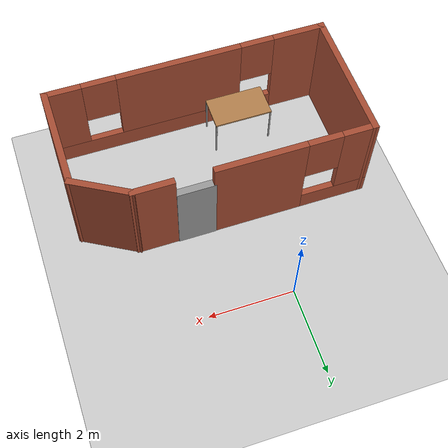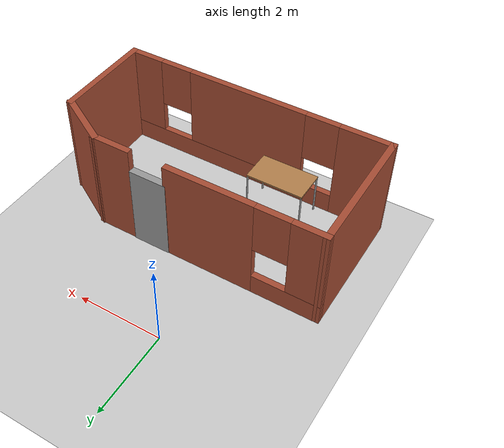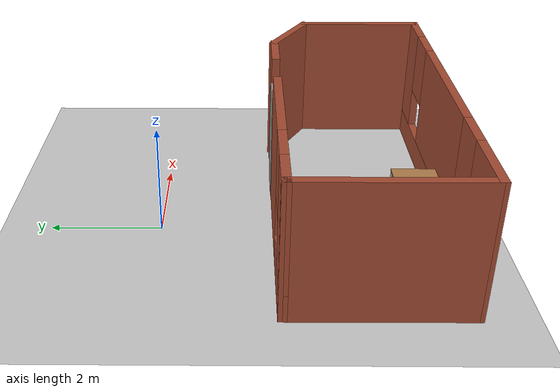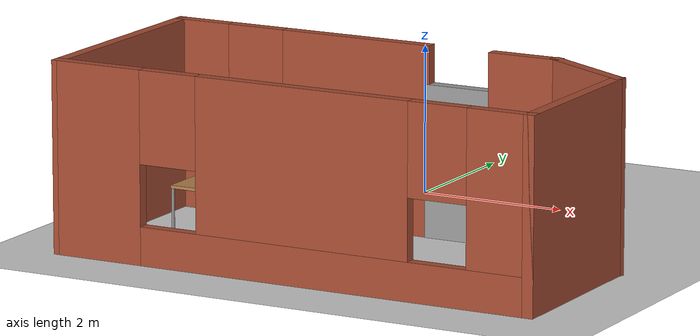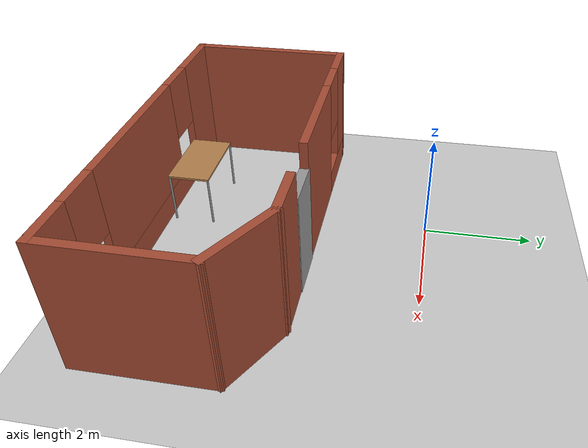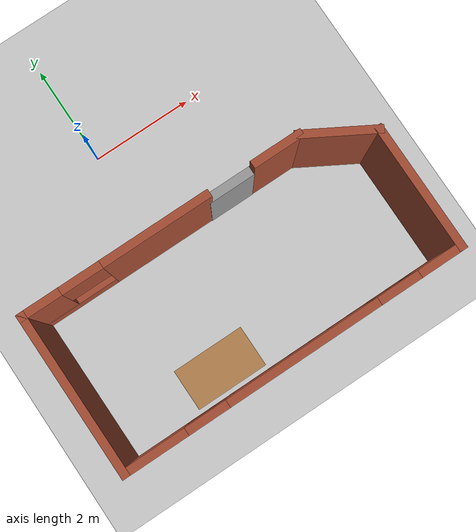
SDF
<sdf version="1.6">
 <world name="default">
  <light name="sun" type="directional">
   <pose>0 0 10 0 -0 0</pose>
   <diffuse>0.8 0.8 0.8 1</diffuse>
   <specular>0.1 0.1 0.1 1</specular>
   <attenuation>
    <range>1000</range>
    <constant>0.9</constant>
    <linear>0.01</linear>
    <quadratic>0.001</quadratic>
   </attenuation>
   <direction>-0.5 0.5 -1</direction>
  </light>
  <model name="ground_plane">
   <static>1</static>
   <link name="link">
    <collision name="collision">
     <geometry><plane><normal>0 0 1</normal><size>100 100</size></plane></geometry>
     <surface><friction><ode><mu>100</mu><mu2>50</mu2></ode></friction></surface>
    </collision>
    <visual name="visual">
     <cast_shadows>0</cast_shadows>
     <geometry><plane><normal>0 0 1</normal><size>100 100</size></plane></geometry>
     <material>
      <script><uri>file://media/materials/scripts/gazebo.material</uri><name>Gazebo/Grey</name></script>
     </material>
    </visual>
   </link>
  </model>
  <gravity>0 0 -9.8</gravity>
  <magnetic_field>6e-06 2.3e-05 -4.2e-05</magnetic_field>
  <atmosphere type="adiabatic"/>
  <physics name="default_physics" default="0" type="ode">
   <max_step_size>0.001</max_step_size>
   <real_time_factor>1</real_time_factor>
   <real_time_update_rate>1000</real_time_update_rate>
  </physics>
  <scene><ambient>0.4 0.4 0.4 1</ambient><background>0.7 0.7 0.7 1</background><shadows>1</shadows></scene>
  <spherical_coordinates>
   <surface_model>EARTH_WGS84</surface_model>
   <latitude_deg>0</latitude_deg>
   <longitude_deg>0</longitude_deg>
   <elevation>0</elevation>
   <heading_deg>0</heading_deg>
  </spherical_coordinates>
  <model name="test.launch">
   <pose>0.846919 -3.59846 0 0 -0 0</pose>
   <link name="Door_1">
    <collision name="Door_1_Collision">
     <geometry><box><size>0.9 0.17 2</size></box></geometry>
     <pose>0 0 1 0 -0 0</pose>
    </collision>
    <visual name="Door_1_Visual">
     <pose>0 0 1 0 -0 0</pose>
     <geometry><box><size>0.9 0.17 2</size></box></geometry>
     <material>
      <script><uri>file://media/materials/scripts/gazebo.material</uri><name>Gazebo/Grey</name></script>
     </material>
    </visual>
    <pose>0.751397 1.5039 0 0 -0 0</pose>
   </link>
   <link name="Wall_0">
    <pose>-0.008603 -1.5261 0 0 -0 0</pose>
    <visual name="Wall_0_Visual_0">
     <pose>-2.7375 0 1.25 0 -0 0</pose>
     <geometry><box><size>1.275 0.15 2.5</size></box></geometry>
     <material>
      <script><uri>file://media/materials/scripts/gazebo.material</uri><name>Gazebo/Bricks</name></script>
      <ambient>1 1 1 1</ambient>
     </material>
    </visual>
    <collision name="Wall_0_Collision_0">
     <geometry><box><size>1.275 0.15 2.5</size></box></geometry>
     <pose>-2.7375 0 1.25 0 -0 0</pose>
    </collision>
    <visual name="Wall_0_Visual_1">
     <pose>0.6375 0 0.25 0 -0 0</pose>
     <geometry><box><size>5.475 0.15 0.5</size></box></geometry>
     <material>
      <script><uri>file://media/materials/scripts/gazebo.material</uri><name>Gazebo/Bricks</name></script>
      <ambient>1 1 1 1</ambient>
     </material>
    </visual>
    <collision name="Wall_0_Collision_1">
     <geometry><box><size>5.475 0.15 0.5</size></box></geometry>
     <pose>0.6375 0 0.25 0 -0 0</pose>
    </collision>
    <visual name="Wall_0_Visual_2">
     <pose>0.185 0 1.5 0 -0 0</pose>
     <geometry><box><size>2.97 0.15 2</size></box></geometry>
     <material>
      <script><uri>file://media/materials/scripts/gazebo.material</uri><name>Gazebo/Bricks</name></script>
      <ambient>1 1 1 1</ambient>
     </material>
    </visual>
    <collision name="Wall_0_Collision_2">
     <geometry><box><size>2.97 0.15 2</size></box></geometry>
     <pose>0.185 0 1.5 0 -0 0</pose>
    </collision>
    <visual name="Wall_0_Visual_3">
     <pose>2.9225 0 1.5 0 -0 0</pose>
     <geometry><box><size>0.905 0.15 2</size></box></geometry>
     <material>
      <script><uri>file://media/materials/scripts/gazebo.material</uri><name>Gazebo/Bricks</name></script>
      <ambient>1 1 1 1</ambient>
     </material>
    </visual>
    <collision name="Wall_0_Collision_3">
     <geometry><box><size>0.905 0.15 2</size></box></geometry>
     <pose>2.9225 0 1.5 0 -0 0</pose>
    </collision>
    <visual name="Wall_0_Visual_4">
     <pose>-1.7 0 1.9 0 -0 0</pose>
     <geometry><box><size>0.8 0.15 1.2</size></box></geometry>
     <material>
      <script><uri>file://media/materials/scripts/gazebo.material</uri><name>Gazebo/Bricks</name></script>
      <ambient>1 1 1 1</ambient>
     </material>
    </visual>
    <collision name="Wall_0_Collision_4">
     <geometry><box><size>0.8 0.15 1.2</size></box></geometry>
     <pose>-1.7 0 1.9 0 -0 0</pose>
    </collision>
    <visual name="Wall_0_Visual_5">
     <pose>2.07 0 1.9 0 -0 0</pose>
     <geometry><box><size>0.8 0.15 1.2</size></box></geometry>
     <material>
      <script><uri>file://media/materials/scripts/gazebo.material</uri><name>Gazebo/Bricks</name></script>
      <ambient>1 1 1 1</ambient>
     </material>
    </visual>
    <collision name="Wall_0_Collision_5">
     <geometry><box><size>0.8 0.15 1.2</size></box></geometry>
     <pose>2.07 0 1.9 0 -0 0</pose>
    </collision>
   </link>
   <link name="Wall_1">
    <collision name="Wall_1_Collision">
     <geometry><box><size>2.5 0.15 2.5</size></box></geometry>
     <pose>0 0 1.25 0 -0 0</pose>
    </collision>
    <visual name="Wall_1_Visual">
     <pose>0 0 1.25 0 -0 0</pose>
     <geometry><box><size>2.5 0.15 2.5</size></box></geometry>
     <material>
      <script><uri>file://media/materials/scripts/gazebo.material</uri><name>Gazebo/Bricks</name></script>
      <ambient>1 1 1 1</ambient>
     </material>
    </visual>
    <pose>3.2914 -0.351103 0 0 -0 1.5708</pose>
   </link>
   <link name="Wall_2">
    <collision name="Wall_2_Collision">
     <geometry><box><size>1.5 0.15 2.5</size></box></geometry>
     <pose>0 0 1.25 0 -0 0</pose>
    </collision>
    <visual name="Wall_2_Visual">
     <pose>0 0 1.25 0 -0 0</pose>
     <geometry><box><size>1.5 0.15 2.5</size></box></geometry>
     <material>
      <script><uri>file://media/materials/scripts/gazebo.material</uri><name>Gazebo/Bricks</name></script>
      <ambient>1 1 1 1</ambient>
     </material>
    </visual>
    <pose>2.70683 1.1614 0 0 -0 2.61799</pose>
   </link>
   <link name="Wall_3">
    <collision name="Wall_3_Collision">
     <geometry><box><size>1 0.15 2.5</size></box></geometry>
     <pose>0 0 1.25 0 -0 0</pose>
    </collision>
    <visual name="Wall_3_Visual">
     <pose>0 0 1.25 0 -0 0</pose>
     <geometry><box><size>1 0.15 2.5</size></box></geometry>
     <material>
      <script><uri>file://media/materials/scripts/gazebo.material</uri><name>Gazebo/Bricks</name></script>
      <ambient>1 1 1 1</ambient>
     </material>
    </visual>
    <pose>1.69726 1.4989 0 0 -0 3.14159</pose>
   </link>
   <link name="Wall_5">
    <pose>-1.5186 1.5039 0 0 -0 3.14159</pose>
    <visual name="Wall_5_Visual_0">
     <pose>-0.8075 0 1.25 0 -0 0</pose>
     <geometry><box><size>2.135 0.15 2.5</size></box></geometry>
     <material>
      <script><uri>file://media/materials/scripts/gazebo.material</uri><name>Gazebo/Bricks</name></script>
      <ambient>1 1 1 1</ambient>
     </material>
    </visual>
    <collision name="Wall_5_Collision_0">
     <geometry><box><size>2.135 0.15 2.5</size></box></geometry>
     <pose>-0.8075 0 1.25 0 -0 0</pose>
    </collision>
    <visual name="Wall_5_Visual_1">
     <pose>1.0675 0 0.25 0 -0 0</pose>
     <geometry><box><size>1.615 0.15 0.5</size></box></geometry>
     <material>
      <script><uri>file://media/materials/scripts/gazebo.material</uri><name>Gazebo/Bricks</name></script>
      <ambient>1 1 1 1</ambient>
     </material>
    </visual>
    <collision name="Wall_5_Collision_1">
     <geometry><box><size>1.615 0.15 0.5</size></box></geometry>
     <pose>1.0675 0 0.25 0 -0 0</pose>
    </collision>
    <visual name="Wall_5_Visual_2">
     <pose>1.4675 0 1.5 0 -0 0</pose>
     <geometry><box><size>0.815 0.15 2</size></box></geometry>
     <material>
      <script><uri>file://media/materials/scripts/gazebo.material</uri><name>Gazebo/Bricks</name></script>
      <ambient>1 1 1 1</ambient>
     </material>
    </visual>
    <collision name="Wall_5_Collision_2">
     <geometry><box><size>0.815 0.15 2</size></box></geometry>
     <pose>1.4675 0 1.5 0 -0 0</pose>
    </collision>
    <visual name="Wall_5_Visual_3">
     <pose>0.66 0 1.9 0 -0 0</pose>
     <geometry><box><size>0.8 0.15 1.2</size></box></geometry>
     <material>
      <script><uri>file://media/materials/scripts/gazebo.material</uri><name>Gazebo/Bricks</name></script>
      <ambient>1 1 1 1</ambient>
     </material>
    </visual>
    <collision name="Wall_5_Collision_3">
     <geometry><box><size>0.8 0.15 1.2</size></box></geometry>
     <pose>0.66 0 1.9 0 -0 0</pose>
    </collision>
   </link>
   <link name="Wall_6">
    <collision name="Wall_6_Collision">
     <geometry><box><size>3.18002 0.15 2.5</size></box></geometry>
     <pose>0 0 1.25 0 -0 0</pose>
    </collision>
    <visual name="Wall_6_Visual">
     <pose>0 0 1.25 0 -0 0</pose>
     <geometry><box><size>3.18002 0.15 2.5</size></box></geometry>
     <material>
      <script><uri>file://media/materials/scripts/gazebo.material</uri><name>Gazebo/Bricks</name></script>
      <ambient>1 1 1 1</ambient>
     </material>
    </visual>
    <pose>-3.3136 -0.011103 0 0 0 -1.5675</pose>
   </link>
   <static>1</static>
  </model>
  <model name="table">
   <static>0</static>
   <link name="link">
    <collision name="surface">
     <pose>0 0 1 0 -0 0</pose>
     <geometry><box><size>1.5 0.8 0.03</size></box></geometry>
     <surface><friction><ode><mu>0.6</mu><mu2>0.6</mu2></ode></friction></surface>
    </collision>
    <visual name="visual1">
     <pose>0 0 1 0 -0 0</pose>
     <geometry><box><size>1.4 0.8 0.04</size></box></geometry>
     <material>
      <script><uri>file://media/materials/scripts/gazebo.material</uri><name>Gazebo/Wood</name></script>
     </material>
    </visual>
    <collision name="front_left_leg">
     <pose>0.68 0.38 0.5 0 -0 0</pose>
     <geometry><cylinder><radius>0.02</radius><length>1</length></cylinder></geometry>
    </collision>
    <visual name="front_left_leg">
     <pose>0.68 0.38 0.5 0 -0 0</pose>
     <geometry><cylinder><radius>0.02</radius><length>1</length></cylinder></geometry>
     <material>
      <script><uri>file://media/materials/scripts/gazebo.material</uri><name>Gazebo/Grey</name></script>
     </material>
    </visual>
    <collision name="front_right_leg">
     <pose>0.68 -0.38 0.5 0 -0 0</pose>
     <geometry><cylinder><radius>0.02</radius><length>1</length></cylinder></geometry>
    </collision>
    <visual name="front_right_leg">
     <pose>0.68 -0.38 0.5 0 -0 0</pose>
     <geometry><cylinder><radius>0.02</radius><length>1</length></cylinder></geometry>
     <material>
      <script><uri>file://media/materials/scripts/gazebo.material</uri><name>Gazebo/Grey</name></script>
     </material>
    </visual>
    <collision name="back_right_leg">
     <pose>-0.68 -0.38 0.5 0 -0 0</pose>
     <geometry><cylinder><radius>0.02</radius><length>1</length></cylinder></geometry>
    </collision>
    <visual name="back_right_leg">
     <pose>-0.68 -0.38 0.5 0 -0 0</pose>
     <geometry><cylinder><radius>0.02</radius><length>1</length></cylinder></geometry>
     <material>
      <script><uri>file://media/materials/scripts/gazebo.material</uri><name>Gazebo/Grey</name></script>
     </material>
    </visual>
    <collision name="back_left_leg">
     <pose>-0.68 0.38 0.5 0 -0 0</pose>
     <geometry><cylinder><radius>0.02</radius><length>1</length></cylinder></geometry>
    </collision>
    <visual name="back_left_leg">
     <pose>-0.68 0.38 0.5 0 -0 0</pose>
     <geometry><cylinder><radius>0.02</radius><length>1</length></cylinder></geometry>
     <material>
      <script><uri>file://media/materials/scripts/gazebo.material</uri><name>Gazebo/Grey</name></script>
     </material>
    </visual>
    <inertial>
     <inertia><ixx>1</ixx><ixy>0</ixy><ixz>0</ixz><iyy>1</iyy><iyz>0</iyz><izz>1</izz></inertia>
     <mass>1</mass>
    </inertial>
   </link>
   <pose>-0.259188 -4.55637 -2e-06 0 -0 0</pose>
  </model>
 </world>
</sdf>
